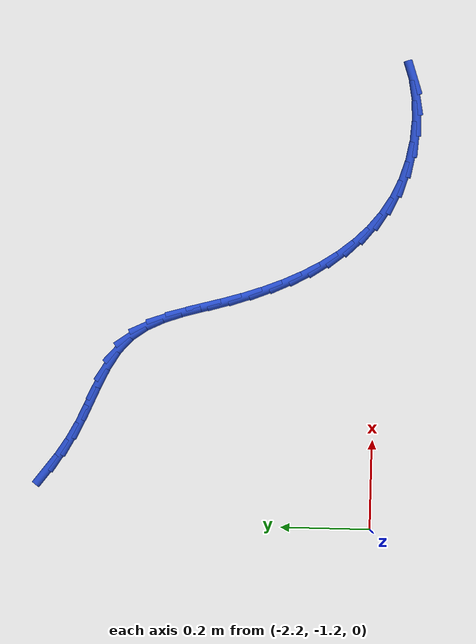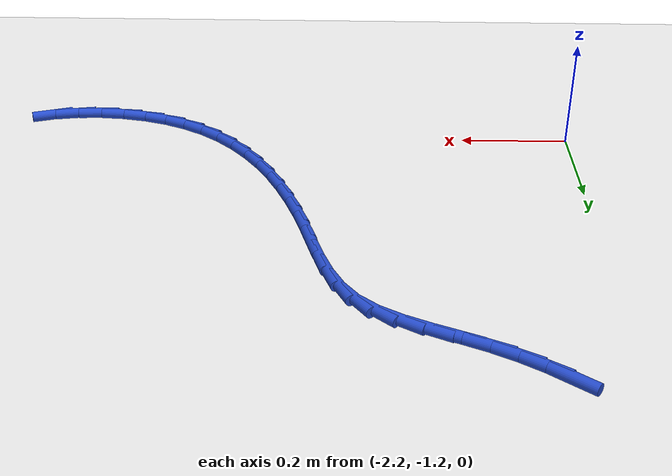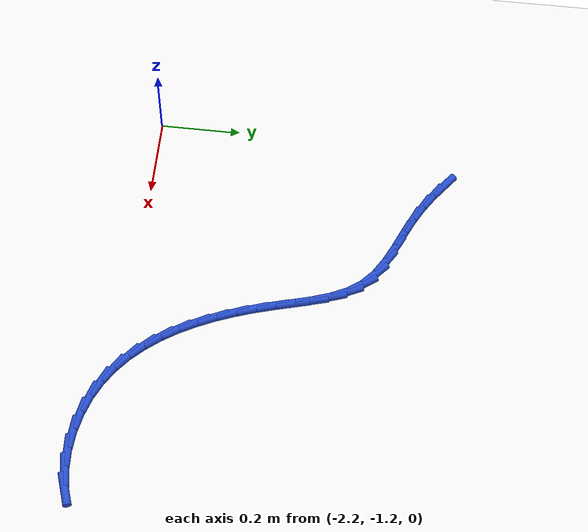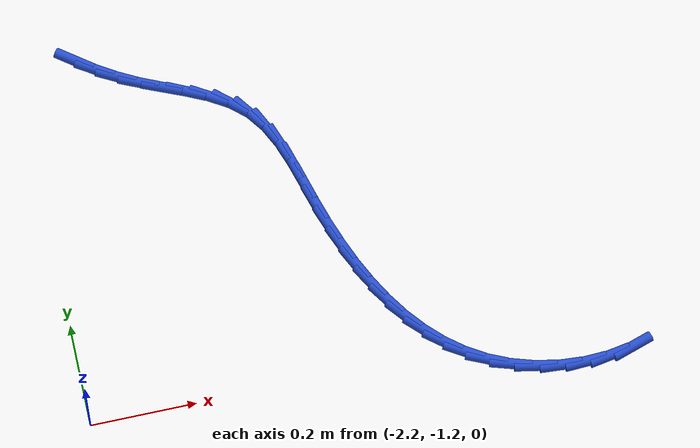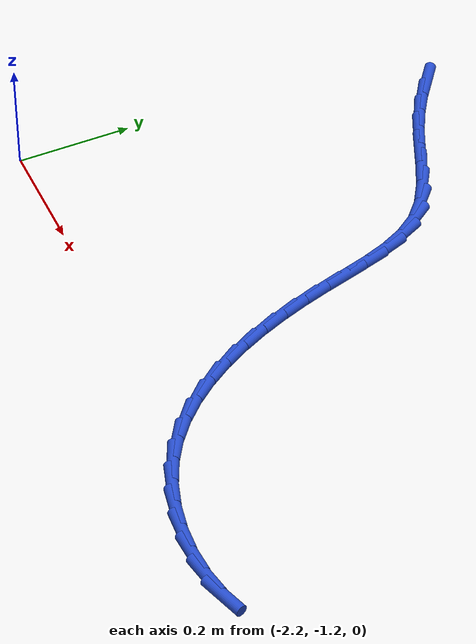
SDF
<sdf version="1.6">
 <world name="default">
  <model name="ground_plane">
   <static>1</static>
   <link name="link">
    <collision name="collision">
     <geometry><plane><normal>0 0 1</normal><size>100 100</size></plane></geometry>
     <surface><friction><ode><mu>100</mu><mu2>50</mu2></ode></friction></surface>
    </collision>
    <visual name="visual">
     <cast_shadows>0</cast_shadows>
     <geometry><plane><normal>0 0 1</normal><size>100 100</size></plane></geometry>
     <material>
      <script><uri>file://media/materials/scripts/gazebo.material</uri><name>Gazebo/WhiteGlow</name></script>
     </material>
    </visual>
   </link>
  </model>
  <model name="line">
   <link name="link_109">
    <pose>-2.087581868829364 -0.4763728890009662 0.01 0 1.57 -0.6470466019225292</pose>
    <collision name="collision">
     <geometry><cylinder><radius>0.01</radius><length>0.08</length></cylinder></geometry>
    </collision>
    <visual name="visual">
     <material>
      <script><name>Gazebo/Blue</name><uri>file://media/materials/scripts/gazebo.material</uri></script>
     </material>
     <geometry><cylinder><radius>0.01</radius><length>0.08</length></cylinder></geometry>
    </visual>
   </link>
   <link name="link_110">
    <pose>-2.0533174243641534 -0.5022615485482161 0.01 0 1.57 -0.5701859326593879</pose>
    <collision name="collision">
     <geometry><cylinder><radius>0.01</radius><length>0.08</length></cylinder></geometry>
    </collision>
    <visual name="visual">
     <material>
      <script><name>Gazebo/Blue</name><uri>file://media/materials/scripts/gazebo.material</uri></script>
     </material>
     <geometry><cylinder><radius>0.01</radius><length>0.08</length></cylinder></geometry>
    </visual>
   </link>
   <link name="link_111">
    <pose>-2.016591787625605 -0.5258111618065736 0.01 0 1.57 -0.4939238415764302</pose>
    <collision name="collision">
     <geometry><cylinder><radius>0.01</radius><length>0.08</length></cylinder></geometry>
    </collision>
    <visual name="visual">
     <material>
      <script><name>Gazebo/Blue</name><uri>file://media/materials/scripts/gazebo.material</uri></script>
     </material>
     <geometry><cylinder><radius>0.01</radius><length>0.08</length></cylinder></geometry>
    </visual>
   </link>
   <link name="link_112">
    <pose>-1.9772986801168657 -0.5469681005479254 0.01 0 1.57 -0.4271489410823086</pose>
    <collision name="collision">
     <geometry><cylinder><radius>0.01</radius><length>0.08</length></cylinder></geometry>
    </collision>
    <visual name="visual">
     <material>
      <script><name>Gazebo/Blue</name><uri>file://media/materials/scripts/gazebo.material</uri></script>
     </material>
     <geometry><cylinder><radius>0.01</radius><length>0.08</length></cylinder></geometry>
    </visual>
   </link>
   <link name="link_113">
    <pose>-1.9356296364303538 -0.5659347987117969 0.01 0 1.57 -0.40793342104420255</pose>
    <collision name="collision">
     <geometry><cylinder><radius>0.01</radius><length>0.08</length></cylinder></geometry>
    </collision>
    <visual name="visual">
     <material>
      <script><name>Gazebo/Blue</name><uri>file://media/materials/scripts/gazebo.material</uri></script>
     </material>
     <geometry><cylinder><radius>0.01</radius><length>0.08</length></cylinder></geometry>
    </visual>
   </link>
   <link name="link_114">
    <pose>-1.8933037125936494 -0.5842270658544734 0.01 0 1.57 -0.4471496243290257</pose>
    <collision name="collision">
     <geometry><cylinder><radius>0.01</radius><length>0.08</length></cylinder></geometry>
    </collision>
    <visual name="visual">
     <material>
      <script><name>Gazebo/Blue</name><uri>file://media/materials/scripts/gazebo.material</uri></script>
     </material>
     <geometry><cylinder><radius>0.01</radius><length>0.08</length></cylinder></geometry>
    </visual>
   </link>
   <link name="link_115">
    <pose>-1.8525283749163455 -0.603780650749201 0.01 0 1.57 -0.5510885839244379</pose>
    <collision name="collision">
     <geometry><cylinder><radius>0.01</radius><length>0.08</length></cylinder></geometry>
    </collision>
    <visual name="visual">
     <material>
      <script><name>Gazebo/Blue</name><uri>file://media/materials/scripts/gazebo.material</uri></script>
     </material>
     <geometry><cylinder><radius>0.01</radius><length>0.08</length></cylinder></geometry>
    </visual>
   </link>
   <link name="link_116">
    <pose>-1.8155113067027586 -0.626531488743088 0.01 0 1.57 -0.7314635256735921</pose>
    <collision name="collision">
     <geometry><cylinder><radius>0.01</radius><length>0.08</length></cylinder></geometry>
    </collision>
    <visual name="visual">
     <material>
      <script><name>Gazebo/Blue</name><uri>file://media/materials/scripts/gazebo.material</uri></script>
     </material>
     <geometry><cylinder><radius>0.01</radius><length>0.08</length></cylinder></geometry>
    </visual>
   </link>
   <link name="link_117">
    <pose>-1.7844521104399809 -0.6544088758961124 0.01 0 1.57 -0.9535564654890827</pose>
    <collision name="collision">
     <geometry><cylinder><radius>0.01</radius><length>0.08</length></cylinder></geometry>
    </collision>
    <visual name="visual">
     <material>
      <script><name>Gazebo/Blue</name><uri>file://media/materials/scripts/gazebo.material</uri></script>
     </material>
     <geometry><cylinder><radius>0.01</radius><length>0.08</length></cylinder></geometry>
    </visual>
   </link>
   <link name="link_118">
    <pose>-1.7603551992016173 -0.688360127674644 0.01 0 1.57 -1.1258343711825471</pose>
    <collision name="collision">
     <geometry><cylinder><radius>0.01</radius><length>0.08</length></cylinder></geometry>
    </collision>
    <visual name="visual">
     <material>
      <script><name>Gazebo/Blue</name><uri>file://media/materials/scripts/gazebo.material</uri></script>
     </material>
     <geometry><cylinder><radius>0.01</radius><length>0.08</length></cylinder></geometry>
    </visual>
   </link>
   <link name="link_119">
    <pose>-1.7417765169560684 -0.7273208707547878 0.01 0 1.57 -1.2367629875590889</pose>
    <collision name="collision">
     <geometry><cylinder><radius>0.01</radius><length>0.08</length></cylinder></geometry>
    </collision>
    <visual name="visual">
     <material>
      <script><name>Gazebo/Blue</name><uri>file://media/materials/scripts/gazebo.material</uri></script>
     </material>
     <geometry><cylinder><radius>0.01</radius><length>0.08</length></cylinder></geometry>
    </visual>
   </link>
   <link name="link_120">
    <pose>-1.7269720840784848 -0.7699803113333409 0.01 0 1.57 -1.2944784392186828</pose>
    <collision name="collision">
     <geometry><cylinder><radius>0.01</radius><length>0.08</length></cylinder></geometry>
    </collision>
    <visual name="visual">
     <material>
      <script><name>Gazebo/Blue</name><uri>file://media/materials/scripts/gazebo.material</uri></script>
     </material>
     <geometry><cylinder><radius>0.01</radius><length>0.08</length></cylinder></geometry>
    </visual>
   </link>
   <link name="link_121">
    <pose>-1.7141979209440181 -0.8150276556070977 0.01 0 1.57 -1.3063921078687737</pose>
    <collision name="collision">
     <geometry><cylinder><radius>0.01</radius><length>0.08</length></cylinder></geometry>
    </collision>
    <visual name="visual">
     <material>
      <script><name>Gazebo/Blue</name><uri>file://media/materials/scripts/gazebo.material</uri></script>
     </material>
     <geometry><cylinder><radius>0.01</radius><length>0.08</length></cylinder></geometry>
    </visual>
   </link>
   <link name="link_122">
    <pose>-1.7017100479278182 -0.8611521097728543 0.01 0 1.57 -1.279656201143833</pose>
    <collision name="collision">
     <geometry><cylinder><radius>0.01</radius><length>0.08</length></cylinder></geometry>
    </collision>
    <visual name="visual">
     <material>
      <script><name>Gazebo/Blue</name><uri>file://media/materials/scripts/gazebo.material</uri></script>
     </material>
     <geometry><cylinder><radius>0.01</radius><length>0.08</length></cylinder></geometry>
    </visual>
   </link>
   <link name="link_123">
    <pose>-1.6879303857684218 -0.9071372207325206 0.01 0 1.57 -1.237622538786153</pose>
    <collision name="collision">
     <geometry><cylinder><radius>0.01</radius><length>0.08</length></cylinder></geometry>
    </collision>
    <visual name="visual">
     <material>
      <script><name>Gazebo/Blue</name><uri>file://media/materials/scripts/gazebo.material</uri></script>
     </material>
     <geometry><cylinder><radius>0.01</radius><length>0.08</length></cylinder></geometry>
    </visual>
   </link>
   <link name="link_124">
    <pose>-1.6722872447919717 -0.952338827704769 0.01 0 1.57 -1.1882260202767772</pose>
    <collision name="collision">
     <geometry><cylinder><radius>0.01</radius><length>0.08</length></cylinder></geometry>
    </collision>
    <visual name="visual">
     <material>
      <script><name>Gazebo/Blue</name><uri>file://media/materials/scripts/gazebo.material</uri></script>
     </material>
     <geometry><cylinder><radius>0.01</radius><length>0.08</length></cylinder></geometry>
    </visual>
   </link>
   <link name="link_125">
    <pose>-1.6545864046018395 -0.9963274211425763 0.01 0 1.57 -1.1304831001340399</pose>
    <collision name="collision">
     <geometry><cylinder><radius>0.01</radius><length>0.08</length></cylinder></geometry>
    </collision>
    <visual name="visual">
     <material>
      <script><name>Gazebo/Blue</name><uri>file://media/materials/scripts/gazebo.material</uri></script>
     </material>
     <geometry><cylinder><radius>0.01</radius><length>0.08</length></cylinder></geometry>
    </visual>
   </link>
   <link name="link_126">
    <pose>-1.634634313940379 -1.038673872010707 0.01 0 1.57 -1.063284437202277</pose>
    <collision name="collision">
     <geometry><cylinder><radius>0.01</radius><length>0.08</length></cylinder></geometry>
    </collision>
    <visual name="visual">
     <material>
      <script><name>Gazebo/Blue</name><uri>file://media/materials/scripts/gazebo.material</uri></script>
     </material>
     <geometry><cylinder><radius>0.01</radius><length>0.08</length></cylinder></geometry>
    </visual>
   </link>
   <link name="link_127">
    <pose>-1.6122374215499458 -1.0789490512739226 0.01 0 1.57 -0.9855099660601792</pose>
    <collision name="collision">
     <geometry><cylinder><radius>0.01</radius><length>0.08</length></cylinder></geometry>
    </collision>
    <visual name="visual">
     <material>
      <script><name>Gazebo/Blue</name><uri>file://media/materials/scripts/gazebo.material</uri></script>
     </material>
     <geometry><cylinder><radius>0.01</radius><length>0.08</length></cylinder></geometry>
    </visual>
   </link>
   <link name="link_128">
    <pose>-1.5872021761728945 -1.1167238298969862 0.01 0 1.57 -0.8962137622419217</pose>
    <collision name="collision">
     <geometry><cylinder><radius>0.01</radius><length>0.08</length></cylinder></geometry>
    </collision>
    <visual name="visual">
     <material>
      <script><name>Gazebo/Blue</name><uri>file://media/materials/scripts/gazebo.material</uri></script>
     </material>
     <geometry><cylinder><radius>0.01</radius><length>0.08</length></cylinder></geometry>
    </visual>
   </link>
   <link name="link_129">
    <pose>-1.559335026551582 -1.1515690788446629 0.01 0 1.57 -0.7949200425887087</pose>
    <collision name="collision">
     <geometry><cylinder><radius>0.01</radius><length>0.08</length></cylinder></geometry>
    </collision>
    <visual name="visual">
     <material>
      <script><name>Gazebo/Blue</name><uri>file://media/materials/scripts/gazebo.material</uri></script>
     </material>
     <geometry><cylinder><radius>0.01</radius><length>0.08</length></cylinder></geometry>
    </visual>
   </link>
   <link name="link_130">
    <pose>-1.5284424214283614 -1.183055669081715 0.01 0 1.57 -0.6820183724173878</pose>
    <collision name="collision">
     <geometry><cylinder><radius>0.01</radius><length>0.08</length></cylinder></geometry>
    </collision>
    <visual name="visual">
     <material>
      <script><name>Gazebo/Blue</name><uri>file://media/materials/scripts/gazebo.material</uri></script>
     </material>
     <geometry><cylinder><radius>0.01</radius><length>0.08</length></cylinder></geometry>
    </visual>
   </link>
   <link name="link_131">
    <pose>-1.4943308095455878 -1.2107544715729057 0.01 0 1.57 -0.5591602219351837</pose>
    <collision name="collision">
     <geometry><cylinder><radius>0.01</radius><length>0.08</length></cylinder></geometry>
    </collision>
    <visual name="visual">
     <material>
      <script><name>Gazebo/Blue</name><uri>file://media/materials/scripts/gazebo.material</uri></script>
     </material>
     <geometry><cylinder><radius>0.01</radius><length>0.08</length></cylinder></geometry>
    </visual>
   </link>
   <link name="link_132">
    <pose>-1.4568066396456179 -1.2342363572829986 0.01 0 1.57 -0.42987354376800907</pose>
    <collision name="collision">
     <geometry><cylinder><radius>0.01</radius><length>0.08</length></cylinder></geometry>
    </collision>
    <visual name="visual">
     <material>
      <script><name>Gazebo/Blue</name><uri>file://media/materials/scripts/gazebo.material</uri></script>
     </material>
     <geometry><cylinder><radius>0.01</radius><length>0.08</length></cylinder></geometry>
    </visual>
   </link>
   <link name="link_133">
    <pose>-1.4157099800411548 -1.2530778597217793 0.01 0 1.57 -0.30477618520831024</pose>
    <collision name="collision">
     <geometry><cylinder><radius>0.01</radius><length>0.08</length></cylinder></geometry>
    </collision>
    <visual name="visual">
     <material>
      <script><name>Gazebo/Blue</name><uri>file://media/materials/scripts/gazebo.material</uri></script>
     </material>
     <geometry><cylinder><radius>0.01</radius><length>0.08</length></cylinder></geometry>
    </visual>
   </link>
   <link name="link_134">
    <pose>-1.3715528478570094 -1.2669686887532237 0.01 0 1.57 -0.18730231395460334</pose>
    <collision name="collision">
     <geometry><cylinder><radius>0.01</radius><length>0.08</length></cylinder></geometry>
    </collision>
    <visual name="visual">
     <material>
      <script><name>Gazebo/Blue</name><uri>file://media/materials/scripts/gazebo.material</uri></script>
     </material>
     <geometry><cylinder><radius>0.01</radius><length>0.08</length></cylinder></geometry>
    </visual>
   </link>
   <link name="link_135">
    <pose>-1.3254673282188725 -1.2757029923092447 0.01 0 1.57 -0.0719188171672053</pose>
    <collision name="collision">
     <geometry><cylinder><radius>0.01</radius><length>0.08</length></cylinder></geometry>
    </collision>
    <visual name="visual">
     <material>
      <script><name>Gazebo/Blue</name><uri>file://media/materials/scripts/gazebo.material</uri></script>
     </material>
     <geometry><cylinder><radius>0.01</radius><length>0.08</length></cylinder></geometry>
    </visual>
   </link>
   <link name="link_136">
    <pose>-1.278608728654476 -1.2790788296714752 0.01 0 1.57 0.04696930398139733</pose>
    <collision name="collision">
     <geometry><cylinder><radius>0.01</radius><length>0.08</length></cylinder></geometry>
    </collision>
    <visual name="visual">
     <material>
      <script><name>Gazebo/Blue</name><uri>file://media/materials/scripts/gazebo.material</uri></script>
     </material>
     <geometry><cylinder><radius>0.01</radius><length>0.08</length></cylinder></geometry>
    </visual>
   </link>
   <link name="link_137">
    <pose>-1.2321323566915496 -1.2768942601215487 0.01 0 1.57 0.17502899160244212</pose>
    <collision name="collision">
     <geometry><cylinder><radius>0.01</radius><length>0.08</length></cylinder></geometry>
    </collision>
    <visual name="visual">
     <material>
      <script><name>Gazebo/Blue</name><uri>file://media/materials/scripts/gazebo.material</uri></script>
     </material>
     <geometry><cylinder><radius>0.01</radius><length>0.08</length></cylinder></geometry>
    </visual>
   </link>
   <link name="link_138">
    <pose>-1.1871935198578265 -1.2689473429410987 0.01 0 1.57 0.3181076231486511</pose>
    <collision name="collision">
     <geometry><cylinder><radius>0.01</radius><length>0.08</length></cylinder></geometry>
    </collision>
    <visual name="visual">
     <material>
      <script><name>Gazebo/Blue</name><uri>file://media/materials/scripts/gazebo.material</uri></script>
     </material>
     <geometry><cylinder><radius>0.01</radius><length>0.08</length></cylinder></geometry>
    </visual>
   </link>
  </model>
 </world>
</sdf>
